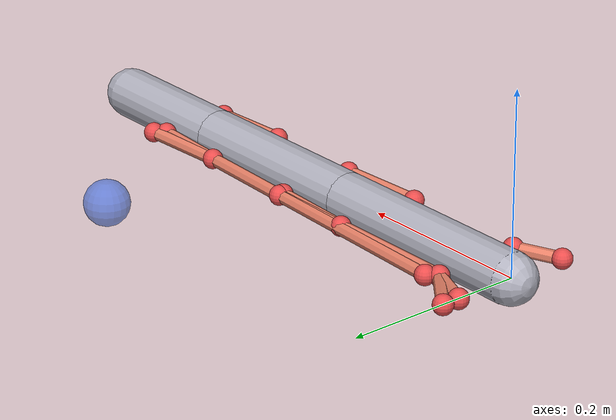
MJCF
<mujoco model="arm3_muscle">
  <compiler angle="radian" autolimits="true"/>
  <option timestep="0.002" integrator="implicitfast"/>

  <default>
    <joint type="hinge" axis="0 0 1" damping="0.25" limited="true"/>
    <geom type="capsule" size="0.028" rgba="0.7 0.7 0.75 1" density="800"/>
    <site size="0.011" rgba="0.9 0.3 0.3 1"/>
    <muscle ctrllimited="true" ctrlrange="0 1"/>
    <tendon width="0.007" rgba="0.9 0.5 0.4 1"/>
  </default>

  <worldbody>
    <light pos="0 0 2"/>
    <geom name="floor" type="plane" pos="0 0 -1" size="2 2 0.1" rgba="0.3 0.3 0.35 1"/>

    <!-- world anchor sites for shoulder muscles + biarticular origin -->
    <site name="w_up"   pos="0 0.07 0"/>
    <site name="w_down" pos="0 -0.07 0"/>
    <site name="w_bi1"  pos="0 0.09 0"/>

    <body name="upper" pos="0 0 0">
      <joint name="shoulder" range="-2.0 2.0"/>
      <geom fromto="0 0 0 0.25 0 0"/>
      <site name="u_up"   pos="0.05 0.05 0"/>
      <site name="u_down" pos="0.05 -0.05 0"/>
      <site name="ue_up"  pos="0.20 0.05 0"/>
      <site name="ue_down" pos="0.20 -0.05 0"/>
      <site name="u_bi2"  pos="0.06 0.06 0"/>   <!-- biarticular2 origin (elbow+wrist) -->

      <body name="fore" pos="0.25 0 0">
        <joint name="elbow" range="-2.5 0.2"/>
        <geom fromto="0 0 0 0.22 0 0"/>
        <site name="f_up"   pos="0.05 0.045 0"/>
        <site name="f_down" pos="0.05 -0.045 0"/>
        <site name="fw_up"  pos="0.17 0.045 0"/>
        <site name="fw_down" pos="0.17 -0.045 0"/>
        <site name="f_bi1"  pos="0.05 0.05 0"/>  <!-- biarticular1 insertion (shoulder+elbow) -->

        <body name="hand" pos="0.22 0 0">
          <joint name="wrist" range="-1.6 1.6"/>
          <geom fromto="0 0 0 0.16 0 0"/>
          <site name="h_up"   pos="0.04 0.04 0"/>
          <site name="h_down" pos="0.04 -0.04 0"/>
          <site name="h_bi2"  pos="0.05 0.05 0"/> <!-- biarticular2 insertion (elbow+wrist) -->
          <site name="tip" pos="0.16 0 0" size="0.02" rgba="0.2 0.8 0.3 1"/>
        </body>
      </body>
    </body>

    <body name="target" mocap="true" pos="0.4 0.2 0">
      <site name="target_site" pos="0 0 0" size="0.025" rgba="0.2 0.4 0.9 0.6"/>
    </body>
  </worldbody>

  <tendon>
    <spatial name="t_sh_flex"><site site="w_up"/><site site="u_up"/></spatial>
    <spatial name="t_sh_ext"> <site site="w_down"/><site site="u_down"/></spatial>
    <spatial name="t_el_flex"><site site="ue_up"/><site site="f_up"/></spatial>
    <spatial name="t_el_ext"> <site site="ue_down"/><site site="f_down"/></spatial>
    <spatial name="t_wr_flex"><site site="fw_up"/><site site="h_up"/></spatial>
    <spatial name="t_wr_ext"> <site site="fw_down"/><site site="h_down"/></spatial>
    <!-- biarticular flexors spanning two joints -->
    <spatial name="t_bi1"><site site="w_bi1"/><site site="u_up"/><site site="f_bi1"/></spatial>
    <spatial name="t_bi2"><site site="u_bi2"/><site site="fw_up"/><site site="h_bi2"/></spatial>
  </tendon>

  <actuator>
    <muscle name="sh_flex" tendon="t_sh_flex"/>
    <muscle name="sh_ext"  tendon="t_sh_ext"/>
    <muscle name="el_flex" tendon="t_el_flex"/>
    <muscle name="el_ext"  tendon="t_el_ext"/>
    <muscle name="wr_flex" tendon="t_wr_flex"/>
    <muscle name="wr_ext"  tendon="t_wr_ext"/>
    <muscle name="bi_shel" tendon="t_bi1"/>
    <muscle name="bi_elwr" tendon="t_bi2"/>
  </actuator>
</mujoco>
